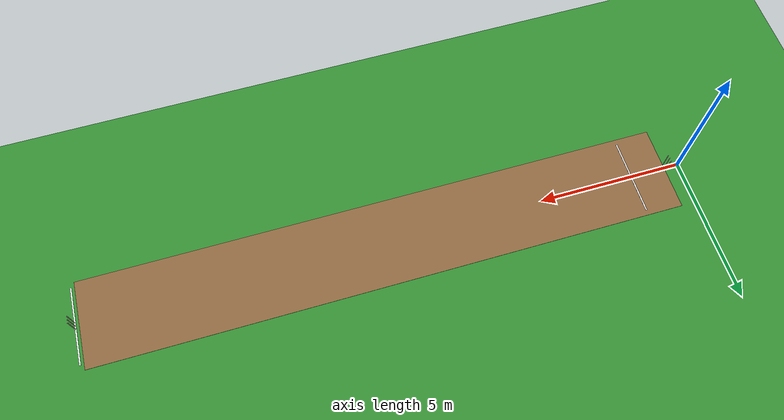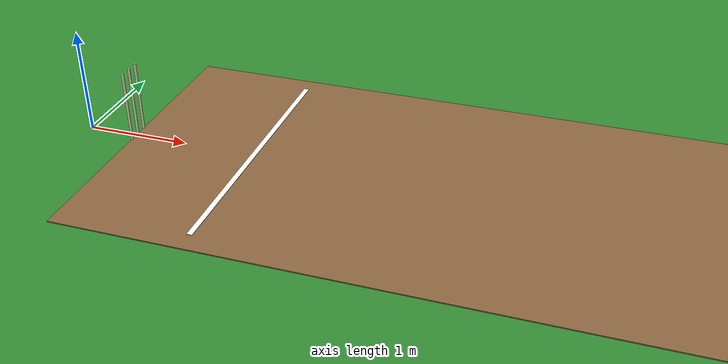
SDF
<?xml version="1.0" ?>
<sdf version="1.6">
  <world name="cricket_world">

    <!-- Physics (matches sensor_demo: 1ms step, DartSim default) -->
    <physics name="1ms" type="ignored">
      <max_step_size>0.001</max_step_size>
      <real_time_factor>1.0</real_time_factor>
    </physics>

    <gravity>0 0 -9.8</gravity>

    <!-- System plugins -->
    <plugin filename="gz-sim-physics-system"
            name="gz::sim::systems::Physics"/>
    <plugin filename="gz-sim-user-commands-system"
            name="gz::sim::systems::UserCommands"/>
    <plugin filename="gz-sim-scene-broadcaster-system"
            name="gz::sim::systems::SceneBroadcaster"/>
    <plugin filename="gz-sim-contact-system"
            name="gz::sim::systems::Contact"/>
    <plugin filename="gz-sim-sensors-system"
            name="gz::sim::systems::Sensors">
      <render_engine>ogre2</render_engine>
    </plugin>
    <plugin filename="gz-sim-imu-system"
            name="gz::sim::systems::Imu"/>

    <!-- Lighting -->
    <light type="directional" name="sun">
      <cast_shadows>true</cast_shadows>
      <pose>0 0 10 0 0 0</pose>
      <diffuse>0.9 0.9 0.9 1</diffuse>
      <specular>0.5 0.5 0.5 1</specular>
      <direction>-0.3 -0.3 -0.9</direction>
    </light>

    <!-- Outfield: 80m x 80m green field -->
    <model name="outfield">
      <static>true</static>
      <link name="ground">
        <collision name="col">
          <geometry><plane><normal>0 0 1</normal><size>80 80</size></plane></geometry>
        </collision>
        <visual name="vis">
          <geometry><plane><normal>0 0 1</normal><size>80 80</size></plane></geometry>
          <material>
            <ambient>0.15 0.45 0.15 1</ambient>
            <diffuse>0.2 0.55 0.2 1</diffuse>
          </material>
        </visual>
      </link>
    </model>

    <!-- Include the cricket scene (pitch, stumps, creases) -->
    <include>
      <uri>model://cricket_scene</uri>
      <pose>0.5 0 0 0 0 0</pose>
    </include>

  </world>
</sdf>

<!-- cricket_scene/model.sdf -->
<sdf version="1.6">
  <model name="cricket_scene">
    <static>true</static>

    <!-- Pitch strip: 20m long, 3m wide, brown -->
    <link name="pitch">
      <pose>10 0 0.01 0 0 0</pose>
      <collision name="col"><geometry><box><size>20 3 0.02</size></box></geometry></collision>
      <visual name="vis">
        <geometry><box><size>20 3 0.02</size></box></geometry>
        <material>
          <ambient>0.5 0.35 0.2 1</ambient>
          <diffuse>0.55 0.4 0.25 1</diffuse>
        </material>
      </visual>
    </link>

    <!-- Outfield: 50m × 50m, green -->
    <link name="outfield">
      <pose>10 0 0.005 0 0 0</pose>
      <collision name="col"><geometry><box><size>50 50 0.01</size></box></geometry></collision>
      <visual name="vis">
        <geometry><box><size>50 50 0.01</size></box></geometry>
        <material>
          <ambient>0.15 0.45 0.15 1</ambient>
          <diffuse>0.2 0.55 0.2 1</diffuse>
        </material>
      </visual>
    </link>

    <!-- Bowling crease line (white) -->
    <link name="bowling_crease">
      <pose>1.22 0 0.025 0 0 0</pose>
      <visual name="vis">
        <geometry><box><size>0.05 2.64 0.005</size></box></geometry>
        <material><ambient>1 1 1 1</ambient><diffuse>1 1 1 1</diffuse></material>
      </visual>
    </link>

    <!-- Batting crease line (white) at the far end -->
    <link name="batting_crease">
      <pose>20.12 0 0.025 0 0 0</pose>
      <visual name="vis">
        <geometry><box><size>0.05 2.64 0.005</size></box></geometry>
        <material><ambient>1 1 1 1</ambient><diffuse>1 1 1 1</diffuse></material>
      </visual>
    </link>

    <!-- Bowler-end stumps: 3 cylinders 71cm tall, 22cm apart -->
    <link name="stump_bowler_1">
      <pose>0 -0.11 0.355 0 0 0</pose>
      <visual name="vis"><geometry><cylinder><radius>0.012</radius><length>0.71</length></cylinder></geometry>
        <material><ambient>0.9 0.85 0.7 1</ambient><diffuse>0.95 0.9 0.75 1</diffuse></material></visual>
      <collision name="col"><geometry><cylinder><radius>0.012</radius><length>0.71</length></cylinder></geometry></collision>
    </link>
    <link name="stump_bowler_2">
      <pose>0 0 0.355 0 0 0</pose>
      <visual name="vis"><geometry><cylinder><radius>0.012</radius><length>0.71</length></cylinder></geometry>
        <material><ambient>0.9 0.85 0.7 1</ambient><diffuse>0.95 0.9 0.75 1</diffuse></material></visual>
      <collision name="col"><geometry><cylinder><radius>0.012</radius><length>0.71</length></cylinder></geometry></collision>
    </link>
    <link name="stump_bowler_3">
      <pose>0 0.11 0.355 0 0 0</pose>
      <visual name="vis"><geometry><cylinder><radius>0.012</radius><length>0.71</length></cylinder></geometry>
        <material><ambient>0.9 0.85 0.7 1</ambient><diffuse>0.95 0.9 0.75 1</diffuse></material></visual>
      <collision name="col"><geometry><cylinder><radius>0.012</radius><length>0.71</length></cylinder></geometry></collision>
    </link>

    <!-- Batsman-end stumps (mirror at 20.12m) -->
    <link name="stump_batsman_1">
      <pose>20.12 -0.11 0.355 0 0 0</pose>
      <visual name="vis"><geometry><cylinder><radius>0.012</radius><length>0.71</length></cylinder></geometry>
        <material><ambient>0.9 0.85 0.7 1</ambient><diffuse>0.95 0.9 0.75 1</diffuse></material></visual>
      <collision name="col"><geometry><cylinder><radius>0.012</radius><length>0.71</length></cylinder></geometry></collision>
    </link>
    <link name="stump_batsman_2">
      <pose>20.12 0 0.355 0 0 0</pose>
      <visual name="vis"><geometry><cylinder><radius>0.012</radius><length>0.71</length></cylinder></geometry>
        <material><ambient>0.9 0.85 0.7 1</ambient><diffuse>0.95 0.9 0.75 1</diffuse></material></visual>
      <collision name="col"><geometry><cylinder><radius>0.012</radius><length>0.71</length></cylinder></geometry></collision>
    </link>
    <link name="stump_batsman_3">
      <pose>20.12 0.11 0.355 0 0 0</pose>
      <visual name="vis"><geometry><cylinder><radius>0.012</radius><length>0.71</length></cylinder></geometry>
        <material><ambient>0.9 0.85 0.7 1</ambient><diffuse>0.95 0.9 0.75 1</diffuse></material></visual>
      <collision name="col"><geometry><cylinder><radius>0.012</radius><length>0.71</length></cylinder></geometry></collision>
    </link>

  </model>
</sdf>
